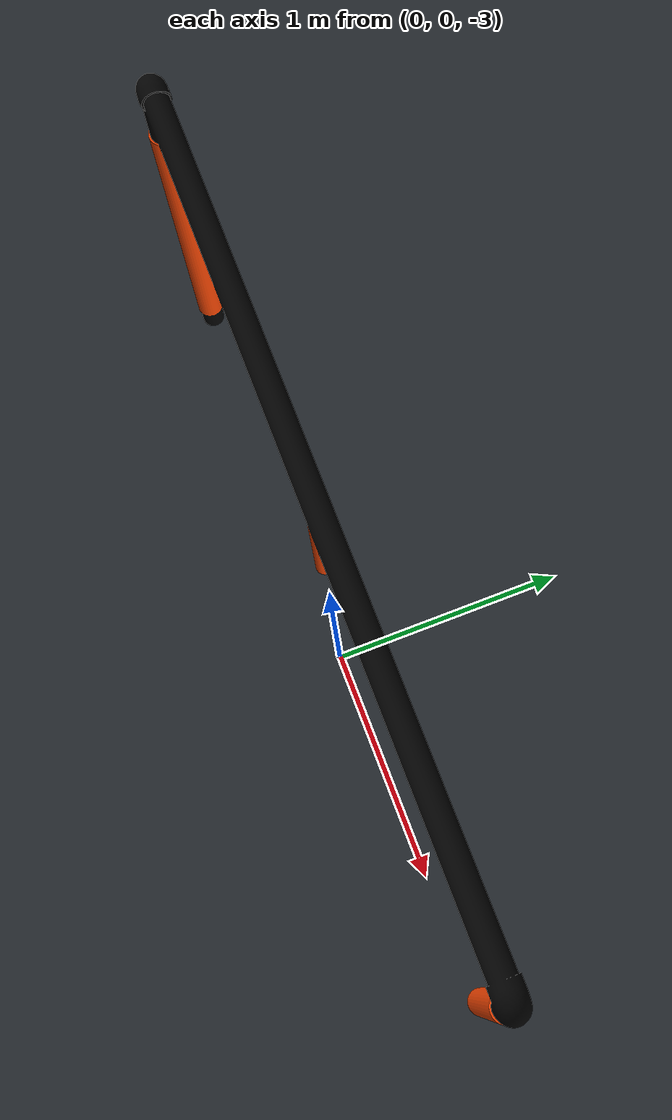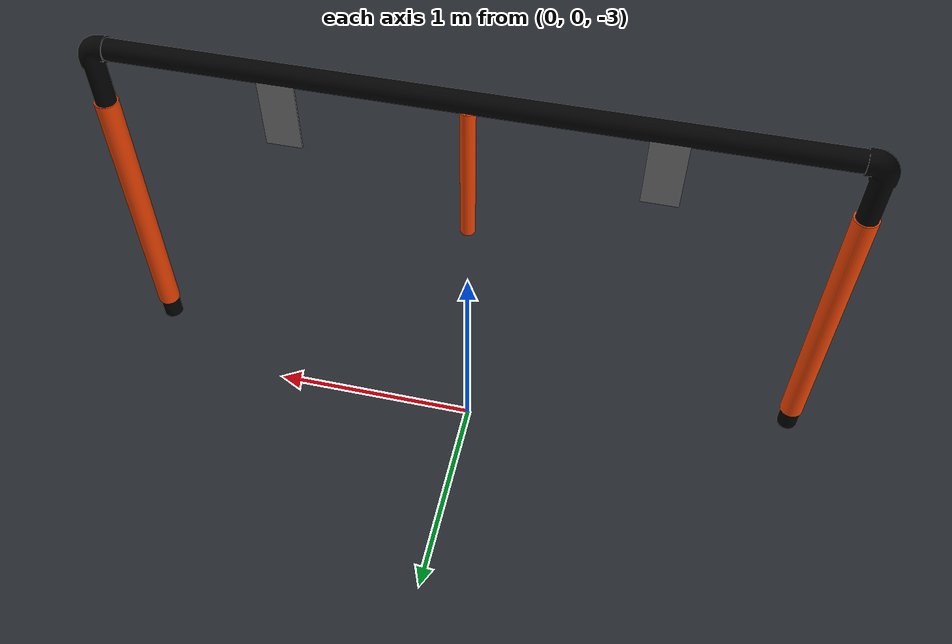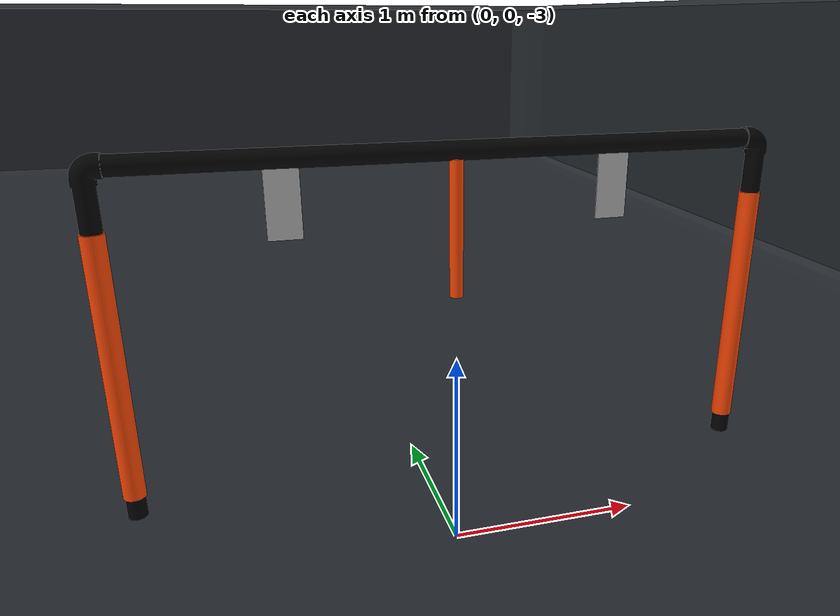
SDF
<?xml version="1.0" ?>
<sdf version="1.9">
    <world name="task_gate">
        <light type="directional" name="sun">
            <cast_shadows>true</cast_shadows>
            <pose>0 0 10 0 0 0</pose>
            <diffuse>0.8 0.8 0.8 1</diffuse>
            <specular>0.2 0.2 0.2 1</specular>
            <attenuation>
                <range>1000</range>
                <constant>0.9</constant>
                <linear>0.01</linear>
                <quadratic>0.001</quadratic>
            </attenuation>
            <direction>-0.5 0.1 -0.9</direction>
        </light>

        <model name="simple_pool">
            <static>true</static>
            <link name="link">
                <visual name="pool_visual">
                    <geometry>
                        <mesh>
                            <uri>../../../assets/common/simple_pool/simple_pool.dae</uri>
                        </mesh>
                    </geometry>
                </visual>
                <collision name="pool_collision">
                    <geometry>
                        <mesh>
                            <uri>../../../assets/common/simple_pool/simple_pool.dae</uri>
                        </mesh>
                    </geometry>
                </collision>
            </link>
        </model>

        <model name="gate">
            <static>true</static>
            <link name="gate">
                <pose>0 0 -1 0 0 0</pose>
                <visual name="gate_visual">
                    <geometry>
                        <mesh>
                            <uri>../../../assets/robosub2022/gate/gate.dae</uri>
                        </mesh>
                    </geometry>
                </visual>
                <collision name="gate_collision">
                    <geometry>
                        <mesh>
                            <uri>../../../assets/robosub2022/gate/gate.dae</uri>
                        </mesh>
                    </geometry>
                </collision>
            </link>
        </model>

    </world>
</sdf>
